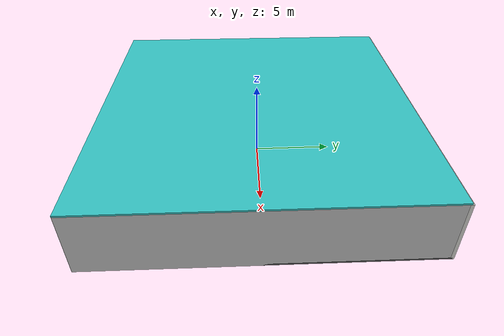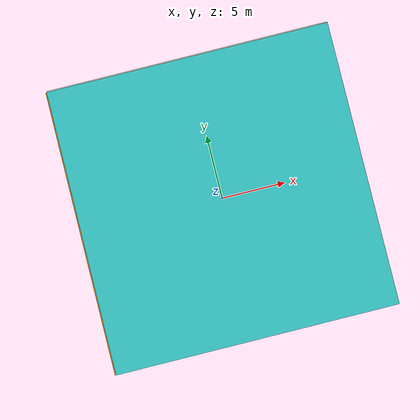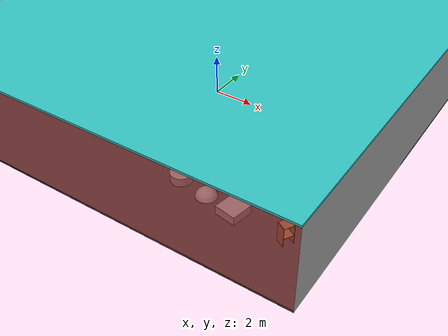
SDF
<sdf version="1.4">
 <world name="default">
  <physics type="ode">
   <max_step_size>0.001</max_step_size>
   <real_time_factor>1</real_time_factor>
   <real_time_update_rate>1000</real_time_update_rate>
   <gravity>0 0 -9.8</gravity>
  </physics>
  <scene><ambient>0.4 0.4 0.4 1</ambient><background>0.7 0.7 0.7 1</background><shadows>1</shadows></scene>
  <model name="Surrounding">
   <static>1</static>
   <link name="Ceiling">
    <collision name="Ceiling_Collision"><geometry><box><size>20 20 0.1</size></box></geometry></collision>
    <visual name="Ceiling_Visual">
     <geometry><box><size>20 20 0.1</size></box></geometry>
     <material>
      <script>
       <uri>file://media/materials/scripts/gazebo.material</uri>
       <name>Gazebo/TurquoiseGlowOutline</name>
      </script>
     </material>
    </visual>
    <pose>0 0 4.05 0 0 0</pose>
   </link>
   <link name="Wall_South">
    <collision name="Wall_South_Collision">
     <geometry><box><size>20 0 4</size></box></geometry>
     <pose>0 0 2 0 -0 0</pose>
    </collision>
    <visual name="Wall_South_Visual">
     <pose>0 0 2 0 -0 0</pose>
     <geometry><box><size>20 0 4</size></box></geometry>
     <material>
      <script><uri>file://media/materials/scripts/gazebo.material</uri><name>Gazebo/RedTransparent</name></script>
     </material>
    </visual>
    <velocity_decay><linear>0</linear><angular>0</angular></velocity_decay>
    <pose>0 -10 0 0 -0 0</pose>
   </link>
   <link name="Wall_East">
    <collision name="Wall_21_Collision">
     <geometry><box><size>20 0 4</size></box></geometry>
     <pose>0 0 2 0 -0 0</pose>
    </collision>
    <visual name="Wall_21_Visual">
     <pose>0 0 2 0 -0 0</pose>
     <geometry><box><size>20 0 4</size></box></geometry>
     <material>
      <script><uri>file://media/materials/scripts/gazebo.material</uri><name>Gazebo/LightOff</name></script>
     </material>
    </visual>
    <velocity_decay><linear>0</linear><angular>0</angular></velocity_decay>
    <pose>10 0 0 0 -0 1.5708</pose>
   </link>
   <link name="Wall_North">
    <collision name="Wall_22_Collision">
     <geometry><box><size>20 0.2 4</size></box></geometry>
     <pose>0 0 2 0 -0 0</pose>
    </collision>
    <visual name="Wall_22_Visual">
     <pose>0 0 2 0 -0 0</pose>
     <geometry><box><size>20 0.2 4</size></box></geometry>
     <material>
      <script><uri>file://media/materials/scripts/gazebo.material</uri><name>Gazebo/CeilingTiled</name></script>
     </material>
    </visual>
    <velocity_decay><linear>0</linear><angular>0</angular></velocity_decay>
    <pose>0 10 0 0 -0 0</pose>
   </link>
   <link name="Wall_West">
    <collision name="Wall_23_Collision">
     <geometry><box><size>20 0.2 4</size></box></geometry>
     <pose>0 0 2 0 -0 0</pose>
    </collision>
    <visual name="Wall_23_Visual">
     <pose>0 0 2 0 -0 0</pose>
     <geometry><box><size>20 0.2 4</size></box></geometry>
     <material>
      <script><uri>file://media/materials/scripts/gazebo.material</uri><name>Gazebo/Orange</name></script>
     </material>
    </visual>
    <velocity_decay><linear>0</linear><angular>0</angular></velocity_decay>
    <pose>-10 0 0 0 0 -1.5708</pose>
   </link>
   <link name="Ground_link">
    <collision name="collision">
     <pose>0 0 .05 0 -0 0</pose>
     <geometry><box><size>20 20 0.1</size></box></geometry>
    </collision>
    <visual name="visual">
     <pose>0 0 .05 0 -0 0</pose>
     <geometry><box><size>20 20 0.1</size></box></geometry>
     <material>
      <script><uri>file://media/materials/scripts/gazebo.material</uri><name>Gazebo/DarkGrey</name></script>
     </material>
    </visual>
   </link>
   <static>1</static>
  </model>
  <spherical_coordinates>
   <surface_model>EARTH_WGS84</surface_model>
   <latitude_deg>0</latitude_deg>
   <longitude_deg>0</longitude_deg>
   <elevation>0</elevation>
   <heading_deg>0</heading_deg>
  </spherical_coordinates>
  <light name="lightball_0" type="diffuse">
   <diffuse>0.8 0.8 0.8 1</diffuse>
   <specular>0.2 0.2 0.2 1</specular>
   <attenuation>
    <range>100</range>
    <constant>0.7</constant>
    <linear>0.01</linear>
    <quadratic>0.001</quadratic>
   </attenuation>
   <direction>-0.5 0.1 -0.9</direction>
   <pose>3.17265213693 7.5989457767 3.33104878402 0 0 0</pose>
  </light>
  <light name="lightball_1" type="diffuse">
   <diffuse>0.8 0.8 0.8 1</diffuse>
   <specular>0.2 0.2 0.2 1</specular>
   <attenuation>
    <range>100</range>
    <constant>0.7</constant>
    <linear>0.01</linear>
    <quadratic>0.001</quadratic>
   </attenuation>
   <direction>-0.5 0.1 -0.9</direction>
   <pose>-8.74738898805 -3.0029412274 1.38708945138 0 0 0</pose>
  </light>
  <light name="lightball_2" type="diffuse">
   <diffuse>0.8 0.8 0.8 1</diffuse>
   <specular>0.2 0.2 0.2 1</specular>
   <attenuation>
    <range>100</range>
    <constant>0.7</constant>
    <linear>0.01</linear>
    <quadratic>0.001</quadratic>
   </attenuation>
   <direction>-0.5 0.1 -0.9</direction>
   <pose>7.21426719044 -5.03159336067 2.43476466833 0 0 0</pose>
  </light>
  <light name="lightball_3" type="diffuse">
   <diffuse>0.8 0.8 0.8 1</diffuse>
   <specular>0.2 0.2 0.2 1</specular>
   <attenuation>
    <range>100</range>
    <constant>0.7</constant>
    <linear>0.01</linear>
    <quadratic>0.001</quadratic>
   </attenuation>
   <direction>-0.5 0.1 -0.9</direction>
   <pose>-1.64484344326 1.77835124014 2.55627603338 0 0 0</pose>
  </light>
  <light name="lightball_4" type="diffuse">
   <diffuse>0.8 0.8 0.8 1</diffuse>
   <specular>0.2 0.2 0.2 1</specular>
   <attenuation>
    <range>100</range>
    <constant>0.7</constant>
    <linear>0.01</linear>
    <quadratic>0.001</quadratic>
   </attenuation>
   <direction>-0.5 0.1 -0.9</direction>
   <pose>6.97347386315 -5.77267277916 1.8701357015 0 0 0</pose>
  </light>
  <light name="lightball_5" type="diffuse">
   <diffuse>0.8 0.8 0.8 1</diffuse>
   <specular>0.2 0.2 0.2 1</specular>
   <attenuation>
    <range>100</range>
    <constant>0.7</constant>
    <linear>0.01</linear>
    <quadratic>0.001</quadratic>
   </attenuation>
   <direction>-0.5 0.1 -0.9</direction>
   <pose>7.35874521229 2.29433652231 3.60741442933 0 0 0</pose>
  </light>
  <light name="lightball_6" type="diffuse">
   <diffuse>0.8 0.8 0.8 1</diffuse>
   <specular>0.2 0.2 0.2 1</specular>
   <attenuation>
    <range>100</range>
    <constant>0.7</constant>
    <linear>0.01</linear>
    <quadratic>0.001</quadratic>
   </attenuation>
   <direction>-0.5 0.1 -0.9</direction>
   <pose>0.710483424072 1.3572370095 1.77563776269 0 0 0</pose>
  </light>
  <light name="lightball_7" type="diffuse">
   <diffuse>0.8 0.8 0.8 1</diffuse>
   <specular>0.2 0.2 0.2 1</specular>
   <attenuation>
    <range>100</range>
    <constant>0.7</constant>
    <linear>0.01</linear>
    <quadratic>0.001</quadratic>
   </attenuation>
   <direction>-0.5 0.1 -0.9</direction>
   <pose>9.53625747609 -6.83272758541 2.19556553292 0 0 0</pose>
  </light>
  <light name="lightball_8" type="diffuse">
   <diffuse>0.8 0.8 0.8 1</diffuse>
   <specular>0.2 0.2 0.2 1</specular>
   <attenuation>
    <range>100</range>
    <constant>0.7</constant>
    <linear>0.01</linear>
    <quadratic>0.001</quadratic>
   </attenuation>
   <direction>-0.5 0.1 -0.9</direction>
   <pose>-8.62626215284 -5.95891935492 3.37587506611 0 0 0</pose>
  </light>
  <light name="lightball_9" type="diffuse">
   <diffuse>0.8 0.8 0.8 1</diffuse>
   <specular>0.2 0.2 0.2 1</specular>
   <attenuation>
    <range>100</range>
    <constant>0.7</constant>
    <linear>0.01</linear>
    <quadratic>0.001</quadratic>
   </attenuation>
   <direction>-0.5 0.1 -0.9</direction>
   <pose>3.88779270236 -3.44877491319 0.580590736531 0 0 0</pose>
  </light>
  <light name="lightball_10" type="diffuse">
   <diffuse>0.8 0.8 0.8 1</diffuse>
   <specular>0.2 0.2 0.2 1</specular>
   <attenuation>
    <range>100</range>
    <constant>0.7</constant>
    <linear>0.01</linear>
    <quadratic>0.001</quadratic>
   </attenuation>
   <direction>-0.5 0.1 -0.9</direction>
   <pose>9.18005241594 -4.4360306032 3.68503550419 0 0 0</pose>
  </light>
  <light name="lightball_11" type="diffuse">
   <diffuse>0.8 0.8 0.8 1</diffuse>
   <specular>0.2 0.2 0.2 1</specular>
   <attenuation>
    <range>100</range>
    <constant>0.7</constant>
    <linear>0.01</linear>
    <quadratic>0.001</quadratic>
   </attenuation>
   <direction>-0.5 0.1 -0.9</direction>
   <pose>-5.48662306578 9.43796538543 3.60725608636 0 0 0</pose>
  </light>
  <include>
   <uri>model://textured_shapes</uri>
   <pose>4.18437088026 -6.86566339055 0 0 0 1.39120107933</pose>
  </include>
  <include><uri>model://table</uri><pose>4.77081471717 -3.89886765556 0 0 0 1.33515591898</pose></include>
  <include>
   <uri>model://textured_shapes</uri>
   <pose>5.20542058229 -1.0442361643 0 0 0 1.78027337436</pose>
  </include>
  <include>
   <uri>model://textured_shapes</uri>
   <pose>5.27560283772 6.75783913511 0 0 0 2.84101115268</pose>
  </include>
  <include><uri>model://cabinet</uri><pose>8.1453566551 -7.32765100263 0 0 0 2.62120275199</pose></include>
 </world>
</sdf>

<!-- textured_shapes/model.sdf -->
<sdf version="1.6">
  <model name="textured_shapes">
    <pose>0 0 0.5 0 0 0</pose>
    <link name="box">
      <pose>0 -1.5 0 0 0 0</pose>
      <collision name="collision">
        <geometry>
          <box>
            <size>1 1 1</size>
          </box>
        </geometry>
      </collision>
      <visual name="visual">
        <geometry>
          <box>
            <size>1 1 1</size>
          </box>
        </geometry>
        <material>
          <script>
            <uri>model://../model_source/models/textured_shapes/materials/scripts</uri>
            <uri>model://../model_source/models/textured_shapes/materials/textures</uri>
            <name>TexturedShape/Squares</name>
          </script>
        </material>
      </visual>
    </link>
    <link name="sphere">
      <collision name="collision">
        <geometry>
          <sphere>
            <radius>0.5</radius>
          </sphere>
        </geometry>
      </collision>
      <visual name="visual">
        <geometry>
          <sphere>
            <radius>0.5</radius>
          </sphere>
        </geometry>
        <material>
          <script>
            <uri>model://../model_source/models/textured_shapes/materials/scripts</uri>
            <uri>model://../model_source/models/textured_shapes/materials/textures</uri>
            <name>TexturedShape/Squares</name>
          </script>
        </material>
      </visual>
    </link>
    <link name="cylinder">
      <pose>0 1.5 0 0 0 0</pose>
      <collision name="collision">
        <geometry>
          <cylinder>
            <radius>0.5</radius>
            <length>1</length>
          </cylinder>
        </geometry>
      </collision>
      <visual name="visual">
        <geometry>
          <cylinder>
            <radius>0.5</radius>
            <length>1</length>
          </cylinder>
        </geometry>
        <material>
          <script>
            <uri>model://../model_source/models/textured_shapes/materials/scripts</uri>
            <uri>model://../model_source/models/textured_shapes/materials/textures</uri>
            <name>TexturedShape/Squares</name>
          </script>
        </material>
      </visual>
    </link>
  </model>
</sdf>

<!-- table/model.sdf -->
<sdf version="1.5">
  <model name="table">
    <static>true</static>
    <link name="link">
      <collision name="surface">
        <pose>0 0 1.0 0 0 0</pose>
        <geometry>
          <box>
            <size>1.5 0.8 0.03</size>
          </box>
        </geometry>
        <surface>
          <friction>
            <ode>
              <mu>0.6</mu>
              <mu2>0.6</mu2>
            </ode>
          </friction>
        </surface>
      </collision>
      <visual name="visual1">
        <pose>0 0 1.0 0 0 0</pose>
        <geometry>
          <box>
            <size>1.5 0.8 0.03</size>
          </box>
        </geometry>
        <material>
          <script>
            <uri>model://media/materials/scripts/gazebo.material</uri>
            <name>Gazebo/Wood</name>
          </script>
        </material>
      </visual>
      <collision name="front_left_leg">
        <pose>0.68 0.38 0.5 0 0 0</pose>
        <geometry>
          <cylinder>
            <radius>0.02</radius>
            <length>1.0</length>
          </cylinder>
        </geometry>
      </collision>
      <visual name="front_left_leg">
        <pose>0.68 0.38 0.5 0 0 0</pose>
        <geometry>
          <cylinder>
            <radius>0.02</radius>
            <length>1.0</length>
          </cylinder>
        </geometry>
        <material>
          <script>
            <uri>model://media/materials/scripts/gazebo.material</uri>
            <name>Gazebo/Grey</name>
          </script>
        </material>
      </visual>
      <collision name="front_right_leg">
        <pose>0.68 -0.38 0.5 0 0 0</pose>
        <geometry>
          <cylinder>
            <radius>0.02</radius>
            <length>1.0</length>
          </cylinder>
        </geometry>
      </collision>
      <visual name="front_right_leg">
        <pose>0.68 -0.38 0.5 0 0 0</pose>
        <geometry>
          <cylinder>
            <radius>0.02</radius>
            <length>1.0</length>
          </cylinder>
        </geometry>
        <material>
          <script>
            <uri>model://media/materials/scripts/gazebo.material</uri>
            <name>Gazebo/Grey</name>
          </script>
        </material>
      </visual>
      <collision name="back_right_leg">
        <pose>-0.68 -0.38 0.5 0 0 0</pose>
        <geometry>
          <cylinder>
            <radius>0.02</radius>
            <length>1.0</length>
          </cylinder>
        </geometry>
      </collision>
      <visual name="back_right_leg">
        <pose>-0.68 -0.38 0.5 0 0 0</pose>
        <geometry>
          <cylinder>
            <radius>0.02</radius>
            <length>1.0</length>
          </cylinder>
        </geometry>
        <material>
          <script>
            <uri>model://media/materials/scripts/gazebo.material</uri>
            <name>Gazebo/Grey</name>
          </script>
        </material>
      </visual>
      <collision name="back_left_leg">
        <pose>-0.68 0.38 0.5 0 0 0</pose>
        <geometry>
          <cylinder>
            <radius>0.02</radius>
            <length>1.0</length>
          </cylinder>
        </geometry>
      </collision>
      <visual name="back_left_leg">
        <pose>-0.68 0.38 0.5 0 0 0</pose>
        <geometry>
          <cylinder>
            <radius>0.02</radius>
            <length>1.0</length>
          </cylinder>
        </geometry>
        <material>
          <script>
            <uri>model://media/materials/scripts/gazebo.material</uri>
            <name>Gazebo/Grey</name>
          </script>
        </material>
      </visual>
    </link>
  </model>
</sdf>

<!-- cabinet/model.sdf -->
<sdf version="1.5">
  <model name="cabinet">
    <static>true</static>
    <link name="cabinet_bottom_plate">
      <inertial>
        <pose>0 0 -1 0 0 0</pose>
        <inertia>
          <ixx>2.050000</ixx>
          <ixy>0</ixy>
          <ixz>0</ixz>
          <iyy>2.050000</iyy>
          <iyz>0</iyz>
          <izz>2.050000</izz>
        </inertia>
        <mass>25.000000</mass>
      </inertial>
      <collision name="cabinet_bottom_plate_geom">
        <pose>0 0 0.010000 0 0 0</pose>
        <geometry>
          <box>
            <size>0.450000 0.450000 0.020000</size>
          </box>
        </geometry>
      </collision>
      <visual name="cabinet_bottom_plate_geom_visual">
        <pose>0 0 0.010000 0 0 0</pose>
        <geometry>
          <box>
            <size>0.450000 0.450000 0.020000</size>
          </box>
        </geometry>
        <material>
          <script>
            <uri>model://media/materials/scripts/gazebo.material</uri>
            <name>Gazebo/Wood</name>
          </script>
        </material>
      </visual>
      <collision name="cabinet_bottom_plate_geom_cabinet_back_plate">
        <pose>0.235000 0 0.510000 0 0 0</pose>
        <geometry>
          <box>
            <size>0.020000 0.450000 1.020000</size>
          </box>
        </geometry>
      </collision>
      <visual name="cabinet_bottom_plate_geom_cabinet_back_plate_visual">
        <pose>0.235000 0 0.510000 0 0 0</pose>
        <geometry>
          <box>
            <size>0.020000 0.450000 1.020000</size>
          </box>
        </geometry>
        <material>
          <script>
            <uri>model://media/materials/scripts/gazebo.material</uri>
            <name>Gazebo/Wood</name>
          </script>
        </material>
      </visual>
      <collision name="cabinet_bottom_plate_geom_cabinet_left_plate">
        <pose>0 0.235000 0.510000 0 0 0</pose>
        <geometry>
          <box>
            <size>0.450000 0.020000 1.020000</size>
          </box>
        </geometry>
      </collision>
      <visual name="cabinet_bottom_plate_geom_cabinet_left_plate_visual">
        <pose>0 0.235000 0.510000 0 0 0</pose>
        <geometry>
          <box>
            <size>0.450000 0.020000 1.020000</size>
          </box>
        </geometry>
        <material>
          <script>
            <uri>model://media/materials/scripts/gazebo.material</uri>
            <name>Gazebo/Wood</name>
          </script>
        </material>
      </visual>
      <collision name="cabinet_bottom_plate_geom_cabinet_middle_plate">
        <pose>0 0 0.510000 0 0 0</pose>
        <geometry>
          <box>
            <size>0.450000 0.450000 0.020000</size>
          </box>
        </geometry>
      </collision>
      <visual name="cabinet_bottom_plate_geom_cabinet_middle_plate_visual">
        <pose>0 0 0.510000 0 0 0</pose>
        <geometry>
          <box>
            <size>0.450000 0.450000 0.020000</size>
          </box>
        </geometry>
        <material>
          <script>
            <uri>model://media/materials/scripts/gazebo.material</uri>
            <name>Gazebo/Wood</name>
          </script>
        </material>
      </visual>
      <collision name="cabinet_bottom_plate_geom_cabinet_right_plate">
        <pose>0 -0.235000 0.510000 0 0 0</pose>
        <geometry>
          <box>
            <size>0.450000 0.020000 1.020000</size>
          </box>
        </geometry>
      </collision>
      <visual name="cabinet_bottom_plate_geom_cabinet_right_plate_visual">
        <pose>0 -0.235000 0.510000 0 0 0</pose>
        <geometry>
          <box>
            <size>0.450000 0.020000 1.020000</size>
          </box>
        </geometry>
        <material>
          <script>
            <uri>model://media/materials/scripts/gazebo.material</uri>
            <name>Gazebo/Wood</name>
          </script>
        </material>
      </visual>
      <collision name="cabinet_bottom_plate_geom_cabinet_top_plate">
        <pose>0 0 1.010000 0 0 0</pose>
        <geometry>
          <box>
            <size>0.450000 0.450000 0.020000</size>
          </box>
        </geometry>
      </collision>
      <visual name="cabinet_bottom_plate_geom_cabinet_top_plate_visual">
        <pose>0 0 1.010000 0 0 0</pose>
        <geometry>
          <box>
            <size>0.450000 0.450000 0.020000</size>
          </box>
        </geometry>
        <material>
          <script>
            <uri>model://media/materials/scripts/gazebo.material</uri>
            <name>Gazebo/Wood</name>
          </script>
        </material>
      </visual>
    </link>
  </model>
</sdf>
